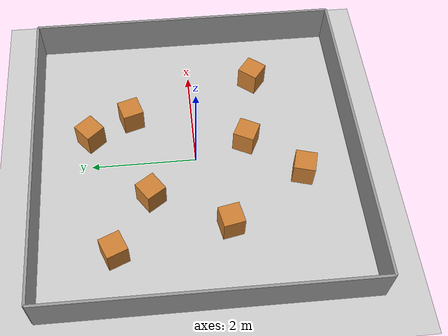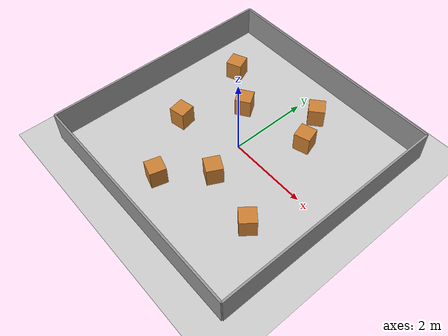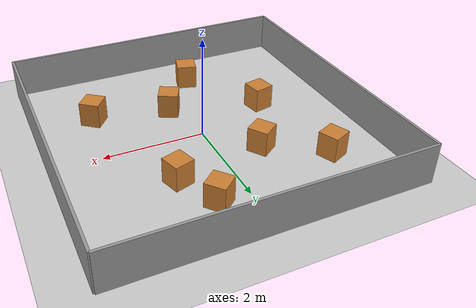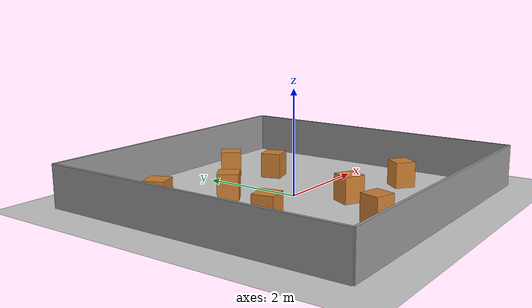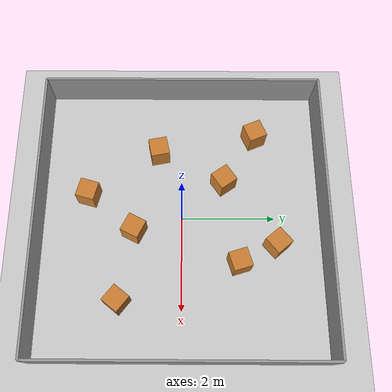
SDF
<?xml version="1.0" ?>
<sdf version="1.6">
  <world name="cluttered_room">
    <include><uri>model://ground_plane</uri></include>
    <include><uri>model://sun</uri></include>

    <!-- Outer boundary walls (6m x 6m room) -->
    <model name="wall_n"><static>true</static><pose>0 3 0.4 0 0 0</pose>
      <link name="link"><collision name="c"><geometry><box><size>6 0.05 0.8</size></box></geometry></collision>
      <visual name="v"><geometry><box><size>6 0.05 0.8</size></box></geometry><material><ambient>0.6 0.6 0.6 1</ambient></material></visual></link></model>
    <model name="wall_s"><static>true</static><pose>0 -3 0.4 0 0 0</pose>
      <link name="link"><collision name="c"><geometry><box><size>6 0.05 0.8</size></box></geometry></collision>
      <visual name="v"><geometry><box><size>6 0.05 0.8</size></box></geometry><material><ambient>0.6 0.6 0.6 1</ambient></material></visual></link></model>
    <model name="wall_e"><static>true</static><pose>3 0 0.4 0 0 1.5708</pose>
      <link name="link"><collision name="c"><geometry><box><size>6 0.05 0.8</size></box></geometry></collision>
      <visual name="v"><geometry><box><size>6 0.05 0.8</size></box></geometry><material><ambient>0.6 0.6 0.6 1</ambient></material></visual></link></model>
    <model name="wall_w"><static>true</static><pose>-3 0 0.4 0 0 1.5708</pose>
      <link name="link"><collision name="c"><geometry><box><size>6 0.05 0.8</size></box></geometry></collision>
      <visual name="v"><geometry><box><size>6 0.05 0.8</size></box></geometry><material><ambient>0.6 0.6 0.6 1</ambient></material></visual></link></model>

    <!-- Scattered clutter boxes: high obstacle density -->
    <model name="box1"><static>true</static><pose>1.0 1.2 0.25 0 0 0.3</pose>
      <link name="link"><collision name="c"><geometry><box><size>0.4 0.4 0.5</size></box></geometry></collision>
      <visual name="v"><geometry><box><size>0.4 0.4 0.5</size></box></geometry><material><ambient>0.8 0.5 0.2 1</ambient></material></visual></link></model>
    <model name="box2"><static>true</static><pose>-0.8 0.9 0.25 0 0 0.6</pose>
      <link name="link"><collision name="c"><geometry><box><size>0.4 0.4 0.5</size></box></geometry></collision>
      <visual name="v"><geometry><box><size>0.4 0.4 0.5</size></box></geometry><material><ambient>0.8 0.5 0.2 1</ambient></material></visual></link></model>
    <model name="box3"><static>true</static><pose>0.3 -1.0 0.25 0 0 1.1</pose>
      <link name="link"><collision name="c"><geometry><box><size>0.4 0.4 0.5</size></box></geometry></collision>
      <visual name="v"><geometry><box><size>0.4 0.4 0.5</size></box></geometry><material><ambient>0.8 0.5 0.2 1</ambient></material></visual></link></model>
    <model name="box4"><static>true</static><pose>-1.5 -0.5 0.25 0 0 0.2</pose>
      <link name="link"><collision name="c"><geometry><box><size>0.4 0.4 0.5</size></box></geometry></collision>
      <visual name="v"><geometry><box><size>0.4 0.4 0.5</size></box></geometry><material><ambient>0.8 0.5 0.2 1</ambient></material></visual></link></model>
    <model name="box5"><static>true</static><pose>1.8 -1.3 0.25 0 0 0.9</pose>
      <link name="link"><collision name="c"><geometry><box><size>0.4 0.4 0.5</size></box></geometry></collision>
      <visual name="v"><geometry><box><size>0.4 0.4 0.5</size></box></geometry><material><ambient>0.8 0.5 0.2 1</ambient></material></visual></link></model>
    <model name="box6"><static>true</static><pose>-1.9 1.6 0.25 0 0 0.4</pose>
      <link name="link"><collision name="c"><geometry><box><size>0.4 0.4 0.5</size></box></geometry></collision>
      <visual name="v"><geometry><box><size>0.4 0.4 0.5</size></box></geometry><material><ambient>0.8 0.5 0.2 1</ambient></material></visual></link></model>
    <model name="box7"><static>true</static><pose>0.6 2.0 0.25 0 0 0.7</pose>
      <link name="link"><collision name="c"><geometry><box><size>0.4 0.4 0.5</size></box></geometry></collision>
      <visual name="v"><geometry><box><size>0.4 0.4 0.5</size></box></geometry><material><ambient>0.8 0.5 0.2 1</ambient></material></visual></link></model>
    <model name="box8"><static>true</static><pose>-0.5 -2.0 0.25 0 0 1.3</pose>
      <link name="link"><collision name="c"><geometry><box><size>0.4 0.4 0.5</size></box></geometry></collision>
      <visual name="v"><geometry><box><size>0.4 0.4 0.5</size></box></geometry><material><ambient>0.8 0.5 0.2 1</ambient></material></visual></link></model>

    <physics type="ode">
      <max_step_size>0.001</max_step_size>
      <real_time_factor>1</real_time_factor>
    </physics>
  </world>
</sdf>
